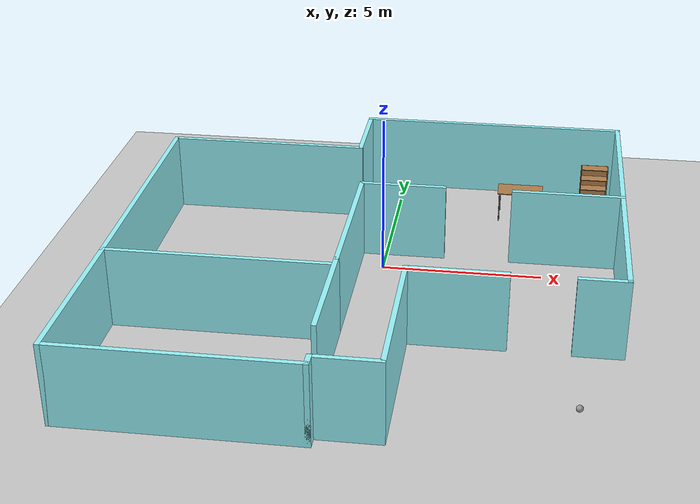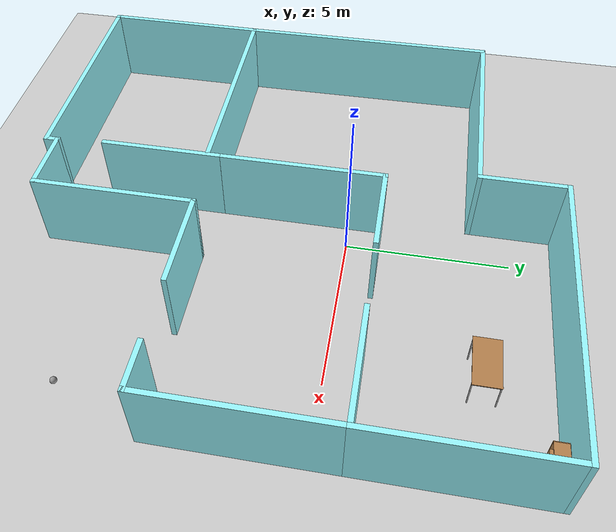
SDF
<sdf version="1.6">
 <world name="default">
  <plugin name="welcome" filename="libwelcome.so"/>
  <light name="sun" type="directional">
   <pose>0 0 10 0 -0 0</pose>
   <diffuse>0.8 0.8 0.8 1</diffuse>
   <specular>0.2 0.2 0.2 1</specular>
   <attenuation>
    <range>1000</range>
    <constant>0.9</constant>
    <linear>0.01</linear>
    <quadratic>0.001</quadratic>
   </attenuation>
   <direction>-0.5 0.1 -0.9</direction>
  </light>
  <model name="ground_plane">
   <static>1</static>
   <link name="link">
    <collision name="collision">
     <geometry><plane><normal>0 0 1</normal><size>100 100</size></plane></geometry>
     <surface>
      <contact><collide_bitmask>65535</collide_bitmask></contact>
      <friction><ode><mu>100</mu><mu2>50</mu2></ode></friction>
     </surface>
    </collision>
    <visual name="visual">
     <cast_shadows>0</cast_shadows>
     <geometry><plane><normal>0 0 1</normal><size>100 100</size></plane></geometry>
     <material>
      <script><uri>file://media/materials/scripts/gazebo.material</uri><name>Gazebo/Grey</name></script>
     </material>
    </visual>
   </link>
  </model>
  <gravity>0 0 -9.8</gravity>
  <magnetic_field>6e-06 2.3e-05 -4.2e-05</magnetic_field>
  <atmosphere type="adiabatic"/>
  <physics name="default_physics" default="0" type="ode">
   <max_step_size>0.001</max_step_size>
   <real_time_factor>1</real_time_factor>
   <real_time_update_rate>1000</real_time_update_rate>
  </physics>
  <scene><ambient>0.4 0.4 0.4 1</ambient><background>0.7 0.7 0.7 1</background><shadows>1</shadows></scene>
  <audio><device>default</device></audio>
  <spherical_coordinates>
   <surface_model>EARTH_WGS84</surface_model>
   <latitude_deg>0</latitude_deg>
   <longitude_deg>0</longitude_deg>
   <elevation>0</elevation>
   <heading_deg>0</heading_deg>
  </spherical_coordinates>
  <model name="firstfloor">
   <pose>-0.12142 -1.62637 0 0 -0 0</pose>
   <link name="Wall_14">
    <collision name="Wall_14_Collision">
     <geometry><box><size>3 0.15 2.5</size></box></geometry>
     <pose>0 0 1.25 0 -0 0</pose>
    </collision>
    <visual name="Wall_14_Visual">
     <pose>0 0 1.25 0 -0 0</pose>
     <geometry><box><size>3 0.15 2.5</size></box></geometry>
     <material>
      <script><uri>file://media/materials/scripts/gazebo.material</uri><name>Gazebo/Grey</name></script>
      <ambient>0.596078 0.968627 0.992157 1</ambient>
     </material>
     <meta><layer>0</layer></meta>
    </visual>
    <pose>2.72262 -2.73897 0 0 -0 0</pose>
   </link>
   <link name="Wall_17">
    <collision name="Wall_17_Collision">
     <geometry><box><size>1.5 0.15 2.5</size></box></geometry>
     <pose>0 0 1.25 0 -0 0</pose>
    </collision>
    <visual name="Wall_17_Visual">
     <pose>0 0 1.25 0 -0 0</pose>
     <geometry><box><size>1.5 0.15 2.5</size></box></geometry>
     <material>
      <script><uri>file://media/materials/scripts/gazebo.material</uri><name>Gazebo/Grey</name></script>
      <ambient>0.596078 0.968627 0.992157 1</ambient>
     </material>
     <meta><layer>0</layer></meta>
    </visual>
    <pose>6.80033 -2.76103 0 0 -0 0</pose>
   </link>
   <link name="Wall_19">
    <collision name="Wall_19_Collision">
     <geometry><box><size>5.5 0.15 2.5</size></box></geometry>
     <pose>0 0 1.25 0 -0 0</pose>
    </collision>
    <visual name="Wall_19_Visual">
     <pose>0 0 1.25 0 -0 0</pose>
     <geometry><box><size>5.5 0.15 2.5</size></box></geometry>
     <material>
      <script><uri>file://media/materials/scripts/gazebo.material</uri><name>Gazebo/Grey</name></script>
      <ambient>0.596078 0.968627 0.992157 1</ambient>
     </material>
     <meta><layer>0</layer></meta>
    </visual>
    <pose>7.47533 -0.086028 0 0 -0 1.5708</pose>
   </link>
   <link name="Wall_20">
    <collision name="Wall_20_Collision">
     <geometry><box><size>3.5 0.15 2.5</size></box></geometry>
     <pose>0 0 1.25 0 -0 0</pose>
    </collision>
    <visual name="Wall_20_Visual">
     <pose>0 0 1.25 0 -0 0</pose>
     <geometry><box><size>3.5 0.15 2.5</size></box></geometry>
     <material>
      <script><uri>file://media/materials/scripts/gazebo.material</uri><name>Gazebo/Grey</name></script>
      <ambient>0.596078 0.968627 0.992157 1</ambient>
     </material>
     <meta><layer>0</layer></meta>
    </visual>
    <pose>5.80033 2.58897 0 0 -0 3.14159</pose>
   </link>
   <link name="Wall_23">
    <collision name="Wall_23_Collision">
     <geometry><box><size>2.75 0.15 2.5</size></box></geometry>
     <pose>0 0 1.25 0 -0 0</pose>
    </collision>
    <visual name="Wall_23_Visual">
     <pose>0 0 1.25 0 -0 0</pose>
     <geometry><box><size>2.75 0.15 2.5</size></box></geometry>
     <material>
      <script><uri>file://media/materials/scripts/gazebo.material</uri><name>Gazebo/Grey</name></script>
      <ambient>0.596078 0.968627 0.992157 1</ambient>
     </material>
     <meta><layer>0</layer></meta>
    </visual>
    <pose>0.6131 2.58957 0 0 -0 3.14159</pose>
   </link>
   <link name="Wall_25">
    <collision name="Wall_25_Collision">
     <geometry><box><size>5.25 0.15 2.5</size></box></geometry>
     <pose>0 0 1.25 0 -0 0</pose>
    </collision>
    <visual name="Wall_25_Visual">
     <pose>0 0 1.25 0 -0 0</pose>
     <geometry><box><size>5.25 0.15 2.5</size></box></geometry>
     <material>
      <script><uri>file://media/materials/scripts/gazebo.material</uri><name>Gazebo/Grey</name></script>
      <ambient>0.596078 0.968627 0.992157 1</ambient>
     </material>
     <meta><layer>0</layer></meta>
    </visual>
    <pose>-0.686899 0.039566 0 0 -0 -1.5708</pose>
   </link>
   <link name="Wall_26">
    <collision name="Wall_26_Collision">
     <geometry><box><size>3.75 0.15 2.5</size></box></geometry>
     <pose>0 0 1.25 0 -0 0</pose>
    </collision>
    <visual name="Wall_26_Visual">
     <pose>0 0 1.25 0 -0 0</pose>
     <geometry><box><size>3.75 0.15 2.5</size></box></geometry>
     <material>
      <script><uri>file://media/materials/scripts/gazebo.material</uri><name>Gazebo/Grey</name></script>
      <ambient>0.596078 0.968627 0.992157 1</ambient>
     </material>
     <meta><layer>0</layer></meta>
    </visual>
    <pose>-0.686899 -4.31043 0 0 -0 -1.5708</pose>
   </link>
   <link name="Wall_28">
    <collision name="Wall_28_Collision">
     <geometry><box><size>5.25 0.15 2.5</size></box></geometry>
     <pose>0 0 1.25 0 -0 0</pose>
    </collision>
    <visual name="Wall_28_Visual">
     <pose>0 0 1.25 0 -0 0</pose>
     <geometry><box><size>5.25 0.15 2.5</size></box></geometry>
     <material>
      <script><uri>file://media/materials/scripts/gazebo.material</uri><name>Gazebo/Grey</name></script>
      <ambient>0.596078 0.968627 0.992157 1</ambient>
     </material>
     <meta><layer>0</layer></meta>
    </visual>
    <pose>-7.40238 -5.38897 0 0 -0 1.5708</pose>
   </link>
   <link name="Wall_3">
    <collision name="Wall_3_Collision">
     <geometry><box><size>7 0.15 2.5</size></box></geometry>
     <pose>0 0 1.25 0 -0 0</pose>
    </collision>
    <visual name="Wall_3_Visual">
     <pose>0 0 1.25 0 -0 0</pose>
     <geometry><box><size>7 0.15 2.5</size></box></geometry>
     <material>
      <script><uri>file://media/materials/scripts/gazebo.material</uri><name>Gazebo/Grey</name></script>
      <ambient>0.596078 0.968627 0.992157 1</ambient>
     </material>
     <meta><layer>0</layer></meta>
    </visual>
    <pose>-3.97738 -7.93897 0 0 -0 0</pose>
   </link>
   <link name="Wall_31">
    <collision name="Wall_31_Collision">
     <geometry><box><size>6.75 0.15 2.5</size></box></geometry>
     <pose>0 0 1.25 0 -0 0</pose>
    </collision>
    <visual name="Wall_31_Visual">
     <pose>0 0 1.25 0 -0 0</pose>
     <geometry><box><size>6.75 0.15 2.5</size></box></geometry>
     <material>
      <script><uri>file://media/materials/scripts/gazebo.material</uri><name>Gazebo/Grey</name></script>
      <ambient>0.596078 0.968627 0.992157 1</ambient>
     </material>
     <meta><layer>0</layer></meta>
    </visual>
    <pose>-4.10238 -2.83897 0 0 -0 0</pose>
   </link>
   <link name="Wall_33">
    <collision name="Wall_33_Collision">
     <geometry><box><size>5.5 0.15 2.5</size></box></geometry>
     <pose>0 0 1.25 0 -0 0</pose>
    </collision>
    <visual name="Wall_33_Visual">
     <pose>0 0 1.25 0 -0 0</pose>
     <geometry><box><size>5.5 0.15 2.5</size></box></geometry>
     <material>
      <script><uri>file://media/materials/scripts/gazebo.material</uri><name>Gazebo/Grey</name></script>
      <ambient>0.596078 0.968627 0.992157 1</ambient>
     </material>
     <meta><layer>0</layer></meta>
    </visual>
    <pose>7.47533 5.26397 0 0 -0 1.5708</pose>
   </link>
   <link name="Wall_34">
    <collision name="Wall_34_Collision">
     <geometry><box><size>8.75 0.15 2.5</size></box></geometry>
     <pose>0 0 1.25 0 -0 0</pose>
    </collision>
    <visual name="Wall_34_Visual">
     <pose>0 0 1.25 0 -0 0</pose>
     <geometry><box><size>8.75 0.15 2.5</size></box></geometry>
     <material>
      <script><uri>file://media/materials/scripts/gazebo.material</uri><name>Gazebo/Grey</name></script>
      <ambient>0.596078 0.968627 0.992157 1</ambient>
     </material>
     <meta><layer>0</layer></meta>
    </visual>
    <pose>3.17533 7.93897 0 0 -0 3.14159</pose>
   </link>
   <link name="Wall_35">
    <collision name="Wall_35_Collision">
     <geometry><box><size>2.75 0.15 2.5</size></box></geometry>
     <pose>0 0 1.25 0 -0 0</pose>
    </collision>
    <visual name="Wall_35_Visual">
     <pose>0 0 1.25 0 -0 0</pose>
     <geometry><box><size>2.75 0.15 2.5</size></box></geometry>
     <material>
      <script><uri>file://media/materials/scripts/gazebo.material</uri><name>Gazebo/Grey</name></script>
      <ambient>0.596078 0.968627 0.992157 1</ambient>
     </material>
     <meta><layer>0</layer></meta>
    </visual>
    <pose>-1.12467 6.63897 0 0 -0 -1.5708</pose>
   </link>
   <link name="Wall_36">
    <collision name="Wall_36_Collision">
     <geometry><box><size>6.5 0.15 2.5</size></box></geometry>
     <pose>0 0 1.25 0 -0 0</pose>
    </collision>
    <visual name="Wall_36_Visual">
     <pose>0 0 1.25 0 -0 0</pose>
     <geometry><box><size>6.5 0.15 2.5</size></box></geometry>
     <material>
      <script><uri>file://media/materials/scripts/gazebo.material</uri><name>Gazebo/Grey</name></script>
      <ambient>0.596078 0.968627 0.992157 1</ambient>
     </material>
     <meta><layer>0</layer></meta>
    </visual>
    <pose>-4.29967 5.33897 0 0 -0 3.14159</pose>
   </link>
   <link name="Wall_37">
    <collision name="Wall_37_Collision">
     <geometry><box><size>8.32826 0.15 2.5</size></box></geometry>
     <pose>0 0 1.25 0 -0 0</pose>
    </collision>
    <visual name="Wall_37_Visual">
     <pose>0 0 1.25 0 -0 0</pose>
     <geometry><box><size>8.32826 0.15 2.5</size></box></geometry>
     <material>
      <script><uri>file://media/materials/scripts/gazebo.material</uri><name>Gazebo/Grey</name></script>
      <ambient>0.596078 0.968627 0.992157 1</ambient>
     </material>
     <meta><layer>0</layer></meta>
    </visual>
    <pose>-7.43852 1.25 0 0 -0 -1.56196</pose>
   </link>
   <link name="Wall_4">
    <collision name="Wall_4_Collision">
     <geometry><box><size>0.5 0.15 2.5</size></box></geometry>
     <pose>0 0 1.25 0 -0 0</pose>
    </collision>
    <visual name="Wall_4_Visual">
     <pose>0 0 1.25 0 -0 0</pose>
     <geometry><box><size>0.5 0.15 2.5</size></box></geometry>
     <material>
      <script><uri>file://media/materials/scripts/gazebo.material</uri><name>Gazebo/Grey</name></script>
      <ambient>0.596078 0.968627 0.992157 1</ambient>
     </material>
     <meta><layer>0</layer></meta>
    </visual>
    <pose>-0.552376 -7.76397 0 0 -0 1.5708</pose>
   </link>
   <link name="Wall_5">
    <collision name="Wall_5_Collision">
     <geometry><box><size>2 0.15 2.5</size></box></geometry>
     <pose>0 0 1.25 0 -0 0</pose>
    </collision>
    <visual name="Wall_5_Visual">
     <pose>0 0 1.25 0 -0 0</pose>
     <geometry><box><size>2 0.15 2.5</size></box></geometry>
     <material>
      <script><uri>file://media/materials/scripts/gazebo.material</uri><name>Gazebo/Grey</name></script>
      <ambient>0.596078 0.968627 0.992157 1</ambient>
     </material>
     <meta><layer>0</layer></meta>
    </visual>
    <pose>0.372624 -7.58897 0 0 -0 0</pose>
   </link>
   <link name="Wall_6">
    <collision name="Wall_6_Collision">
     <geometry><box><size>5 0.15 2.5</size></box></geometry>
     <pose>0 0 1.25 0 -0 0</pose>
    </collision>
    <visual name="Wall_6_Visual">
     <pose>0 0 1.25 0 -0 0</pose>
     <geometry><box><size>5 0.15 2.5</size></box></geometry>
     <material>
      <script><uri>file://media/materials/scripts/gazebo.material</uri><name>Gazebo/Grey</name></script>
      <ambient>0.596078 0.968627 0.992157 1</ambient>
     </material>
     <meta><layer>0</layer></meta>
    </visual>
    <pose>1.29762 -5.16397 0 0 -0 1.5708</pose>
   </link>
   <static>1</static>
  </model>
  <model name="bookshelf">
   <static>1</static>
   <link name="link">
    <inertial><mass>1</mass></inertial>
    <collision name="back">
     <pose>0 0.005 0.6 0 -0 0</pose>
     <geometry><box><size>0.9 0.01 1.2</size></box></geometry>
    </collision>
    <visual name="visual1">
     <pose>0 0.005 0.6 0 -0 0</pose>
     <geometry><box><size>0.9 0.01 1.2</size></box></geometry>
     <material>
      <script><uri>file://media/materials/scripts/gazebo.material</uri><name>Gazebo/Wood</name></script>
     </material>
    </visual>
    <collision name="left_side">
     <pose>0.45 -0.195 0.6 0 -0 0</pose>
     <geometry><box><size>0.02 0.4 1.2</size></box></geometry>
    </collision>
    <visual name="visual2">
     <pose>0.45 -0.195 0.6 0 -0 0</pose>
     <geometry><box><size>0.02 0.4 1.2</size></box></geometry>
     <material>
      <script><uri>file://media/materials/scripts/gazebo.material</uri><name>Gazebo/Wood</name></script>
     </material>
    </visual>
    <collision name="right_side">
     <pose>-0.45 -0.195 0.6 0 -0 0</pose>
     <geometry><box><size>0.02 0.4 1.2</size></box></geometry>
    </collision>
    <visual name="visual3">
     <pose>-0.45 -0.195 0.6 0 -0 0</pose>
     <geometry><box><size>0.02 0.4 1.2</size></box></geometry>
     <material>
      <script><uri>file://media/materials/scripts/gazebo.material</uri><name>Gazebo/Wood</name></script>
     </material>
    </visual>
    <collision name="bottom">
     <pose>0 -0.195 0.03 0 -0 0</pose>
     <geometry><box><size>0.88 0.4 0.06</size></box></geometry>
    </collision>
    <visual name="visual4">
     <pose>0 -0.195 0.03 0 -0 0</pose>
     <geometry><box><size>0.88 0.4 0.06</size></box></geometry>
     <material>
      <script><uri>file://media/materials/scripts/gazebo.material</uri><name>Gazebo/Wood</name></script>
     </material>
    </visual>
    <collision name="top">
     <pose>0 -0.195 1.19 0 -0 0</pose>
     <geometry><box><size>0.88 0.4 0.02</size></box></geometry>
    </collision>
    <visual name="visual5">
     <pose>0 -0.195 1.19 0 -0 0</pose>
     <geometry><box><size>0.88 0.4 0.02</size></box></geometry>
     <material>
      <script><uri>file://media/materials/scripts/gazebo.material</uri><name>Gazebo/Wood</name></script>
     </material>
    </visual>
    <collision name="low_shelf">
     <pose>0 -0.195 0.43 0 -0 0</pose>
     <geometry><box><size>0.88 0.4 0.02</size></box></geometry>
    </collision>
    <visual name="visual6">
     <pose>0 -0.195 0.43 0 -0 0</pose>
     <geometry><box><size>0.88 0.4 0.02</size></box></geometry>
     <material>
      <script><uri>file://media/materials/scripts/gazebo.material</uri><name>Gazebo/Wood</name></script>
     </material>
    </visual>
    <collision name="high_shelf">
     <pose>0 -0.195 0.8 0 -0 0</pose>
     <geometry><box><size>0.88 0.4 0.02</size></box></geometry>
    </collision>
    <visual name="visual7">
     <pose>0 -0.195 0.8 0 -0 0</pose>
     <geometry><box><size>0.88 0.4 0.02</size></box></geometry>
     <material>
      <script><uri>file://media/materials/scripts/gazebo.material</uri><name>Gazebo/Wood</name></script>
     </material>
    </visual>
   </link>
   <pose>6.68162 6.17388 0 0 -0 0</pose>
  </model>
  <model name="table">
   <static>1</static>
   <link name="link">
    <collision name="surface">
     <pose>0 0 1 0 -0 0</pose>
     <geometry><box><size>1.5 0.8 0.03</size></box></geometry>
     <surface><friction><ode><mu>0.6</mu><mu2>0.6</mu2></ode></friction></surface>
    </collision>
    <visual name="visual1">
     <pose>0 0 1 0 -0 0</pose>
     <geometry><box><size>1.5 0.8 0.03</size></box></geometry>
     <material>
      <script><uri>file://media/materials/scripts/gazebo.material</uri><name>Gazebo/Wood</name></script>
     </material>
    </visual>
    <collision name="front_left_leg">
     <pose>0.68 0.38 0.5 0 -0 0</pose>
     <geometry><cylinder><radius>0.02</radius><length>1</length></cylinder></geometry>
    </collision>
    <visual name="front_left_leg">
     <pose>0.68 0.38 0.5 0 -0 0</pose>
     <geometry><cylinder><radius>0.02</radius><length>1</length></cylinder></geometry>
     <material>
      <script><uri>file://media/materials/scripts/gazebo.material</uri><name>Gazebo/Grey</name></script>
     </material>
    </visual>
    <collision name="front_right_leg">
     <pose>0.68 -0.38 0.5 0 -0 0</pose>
     <geometry><cylinder><radius>0.02</radius><length>1</length></cylinder></geometry>
    </collision>
    <visual name="front_right_leg">
     <pose>0.68 -0.38 0.5 0 -0 0</pose>
     <geometry><cylinder><radius>0.02</radius><length>1</length></cylinder></geometry>
     <material>
      <script><uri>file://media/materials/scripts/gazebo.material</uri><name>Gazebo/Grey</name></script>
     </material>
    </visual>
    <collision name="back_right_leg">
     <pose>-0.68 -0.38 0.5 0 -0 0</pose>
     <geometry><cylinder><radius>0.02</radius><length>1</length></cylinder></geometry>
    </collision>
    <visual name="back_right_leg">
     <pose>-0.68 -0.38 0.5 0 -0 0</pose>
     <geometry><cylinder><radius>0.02</radius><length>1</length></cylinder></geometry>
     <material>
      <script><uri>file://media/materials/scripts/gazebo.material</uri><name>Gazebo/Grey</name></script>
     </material>
    </visual>
    <collision name="back_left_leg">
     <pose>-0.68 0.38 0.5 0 -0 0</pose>
     <geometry><cylinder><radius>0.02</radius><length>1</length></cylinder></geometry>
    </collision>
    <visual name="back_left_leg">
     <pose>-0.68 0.38 0.5 0 -0 0</pose>
     <geometry><cylinder><radius>0.02</radius><length>1</length></cylinder></geometry>
     <material>
      <script><uri>file://media/materials/scripts/gazebo.material</uri><name>Gazebo/Grey</name></script>
     </material>
    </visual>
   </link>
   <pose>4.15573 4.24198 0 0 -0 0</pose>
  </model>
  <model name="ball">
   <link name="link_0">
    <inertial>
     <mass>1</mass>
     <inertia><ixx>0.1</ixx><ixy>0</ixy><ixz>0</ixz><iyy>0.1</iyy><iyz>0</iyz><izz>0.1</izz></inertia>
    </inertial>
    <visual name="visual">
     <geometry><sphere><radius>0.1</radius></sphere></geometry>
     <material>
      <lighting>1</lighting>
      <script><uri>file://media/materials/scripts/gazebo.material</uri><name>Gazebo/Grey</name></script>
      <shader type="vertex"><normal_map>__default__</normal_map></shader>
      <ambient>1 1 1 1</ambient>
      <diffuse>1 1 1 1</diffuse>
      <specular>1 1 1 1</specular>
      <emissive>1 1 1 1</emissive>
     </material>
    </visual>
    <collision name="collision">
     <geometry><sphere><radius>0.1</radius></sphere></geometry>
     <surface>
      <friction>
       <ode><mu>1</mu><mu2>1</mu2><fdir1>0 0 0</fdir1><slip1>0</slip1><slip2>0</slip2></ode>
       <torsional>
        <coefficient>1</coefficient>
        <patch_radius>0</patch_radius>
        <surface_radius>0</surface_radius>
        <use_patch_radius>1</use_patch_radius>
        <ode><slip>0</slip></ode>
       </torsional>
      </friction>
      <bounce><restitution_coefficient>0</restitution_coefficient><threshold>1e+06</threshold></bounce>
      <contact>
       <collide_without_contact>0</collide_without_contact>
       <collide_without_contact_bitmask>1</collide_without_contact_bitmask>
       <collide_bitmask>1</collide_bitmask>
       <ode>
        <soft_cfm>0</soft_cfm>
        <soft_erp>0.2</soft_erp>
        <kp>1e+13</kp>
        <kd>1</kd>
        <max_vel>0.01</max_vel>
        <min_depth>0</min_depth>
       </ode>
       <bullet>
        <split_impulse>1</split_impulse>
        <split_impulse_penetration_threshold>-0.01</split_impulse_penetration_threshold>
        <soft_cfm>0</soft_cfm>
        <soft_erp>0.2</soft_erp>
        <kp>1e+13</kp>
        <kd>1</kd>
       </bullet>
      </contact>
     </surface>
    </collision>
   </link>
   <static>0</static>
   <pose>6.1437 -7.14274 0.1 0 -0 0</pose>
  </model>
 </world>
</sdf>
